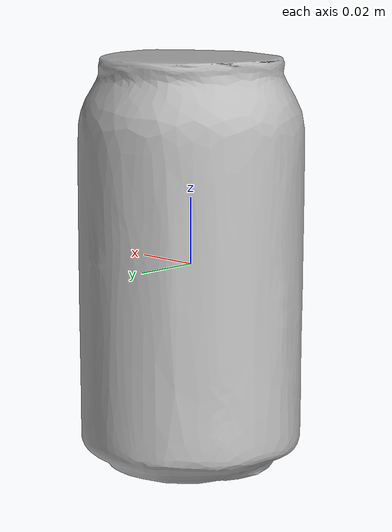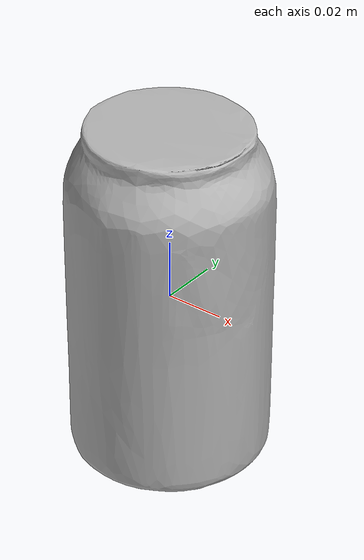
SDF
<?xml version="1.0" ?>
<sdf version="1.5">
  <model name="coke_can">
    <link name="link">
      <inertial>
        <pose>0.0 0.0 0.0 0 0 0</pose>
	<!-- assume empty can -->
        <mass>0.050</mass>
        <inertia>
          <ixx>0.000057943</ixx>
          <ixy>0</ixy>
          <ixz>0</ixz>
          <iyy>0.00005792</iyy>
          <iyz>0</iyz>
          <izz>0.000021674</izz>
        </inertia>
      </inertial>
      <collision name="collision">
        <pose>0 0 0 0 0 0</pose>
        <geometry>
          <mesh>
            <uri>model://coke_can_smaller/meshes/coke_can.dae</uri>
          </mesh>
        </geometry>
        <surface>
          <friction>
            <ode>
              <mu>1000.0</mu>
              <mu2>1000.0</mu2>
              <slip1>1.0</slip1>
              <slip2>1.0</slip2>
            </ode>
          </friction>
          <contact>
            <ode>
              <kp>10000000.0</kp>
              <kd>1.0</kd>
              <min_depth>0.003</min_depth>
              <max_vel>0.1</max_vel>
            </ode>
          </contact>
        </surface>
      </collision>
      <visual name="visual">
        <pose>0 0 0.0 0 0 0</pose>
        <geometry>
          <mesh>
            <uri>model://coke_can_smaller/meshes/coke_can.dae</uri>
          </mesh>
        </geometry>
      </visual>
    </link>
  </model>
</sdf>
